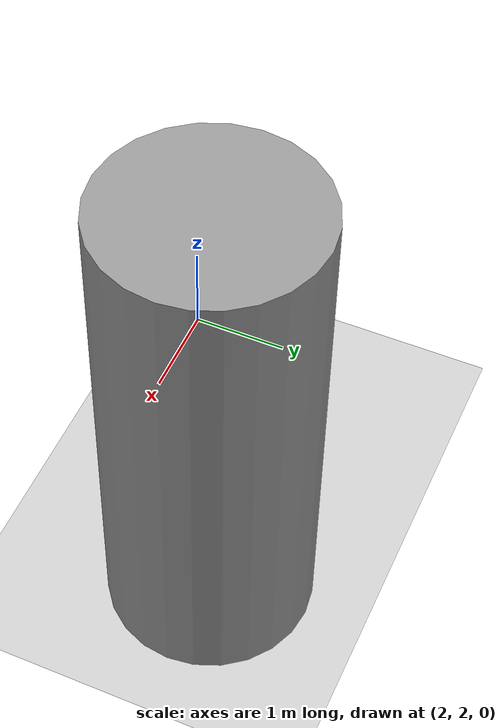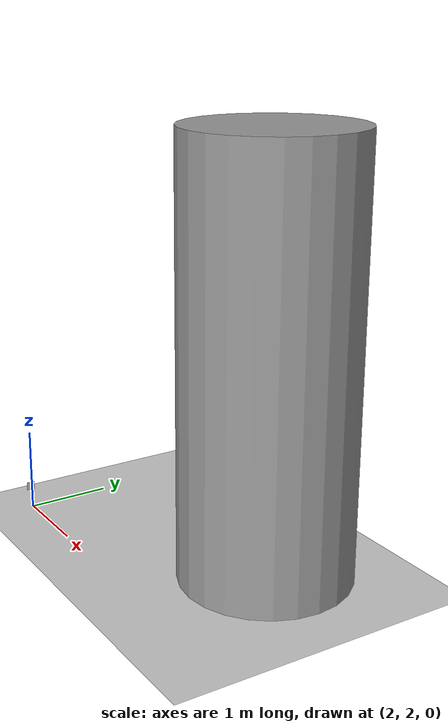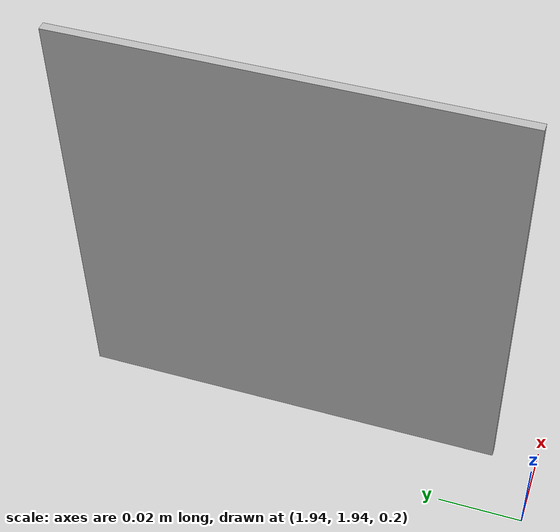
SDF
<?xml version="1.0" ?>
<sdf version="1.4">
  <world name="default">
    <!-- A global light source -->
    <plugin name="ros_link_attacher_plugin" filename="libgazebo_ros_link_attacher.so"/>
    <include>
      <uri>model://sun</uri>
    </include>
    <!-- A ground plane -->
    <include>
      <uri>model://ground_plane</uri>
    </include>

    <!-- Aruco marker -->
    <model name='Marker0'>
      <static>1</static>
      <link name='link'>
        <visual name='visual'>
          <geometry>
            <mesh>
              <uri>model://marker0/meshes/Marker0.dae</uri>
              <scale>0.2 0.2 0.2</scale>
            </mesh>
          </geometry>
        </visual>
        <self_collide>0</self_collide>
        <enable_wind>0</enable_wind>
        <kinematic>0</kinematic>
      </link>
      <pose>1.95 2 0.21 0 -0 0</pose>
    </model>

    <!-- Cylinder -->
    <model name='unit_cylinder'>
      <pose frame=''>5 3.5 2.5 0 -0 0</pose>
      <static>true</static>
      <link name='link'>
        <inertial>
          <mass>1</mass>
          <inertia>
            <ixx>0.145833</ixx>
            <ixy>0</ixy>
            <ixz>0</ixz>
            <iyy>0.145833</iyy>
            <iyz>0</iyz>
            <izz>0.125</izz>
          </inertia>
          <pose>0 0 0 0 -0 0</pose>
        </inertial>
        <collision name='collision'>
          <geometry>
            <cylinder>
              <radius>1.0</radius>
              <length>5</length>
            </cylinder>
          </geometry>
          <max_contacts>10</max_contacts>
          <surface>
            <contact>
              <ode/>
            </contact>
            <bounce/>
            <friction>
              <torsional>
                <ode/>
              </torsional>
              <ode/>
            </friction>
          </surface>
        </collision>
        <visual name='visual'>
          <geometry>
            <cylinder>
              <radius>1.0</radius>
              <length>5</length>
            </cylinder>
          </geometry>
          <material>
            <script>
              <name>Gazebo/Grey</name>
              <uri>file://media/materials/scripts/gazebo.material</uri>
            </script>
          </material>
        </visual>
        <self_collide>0</self_collide>
        <kinematic>0</kinematic>
        <enable_wind>0</enable_wind>
      </link>
    </model>
  </world>
</sdf>
